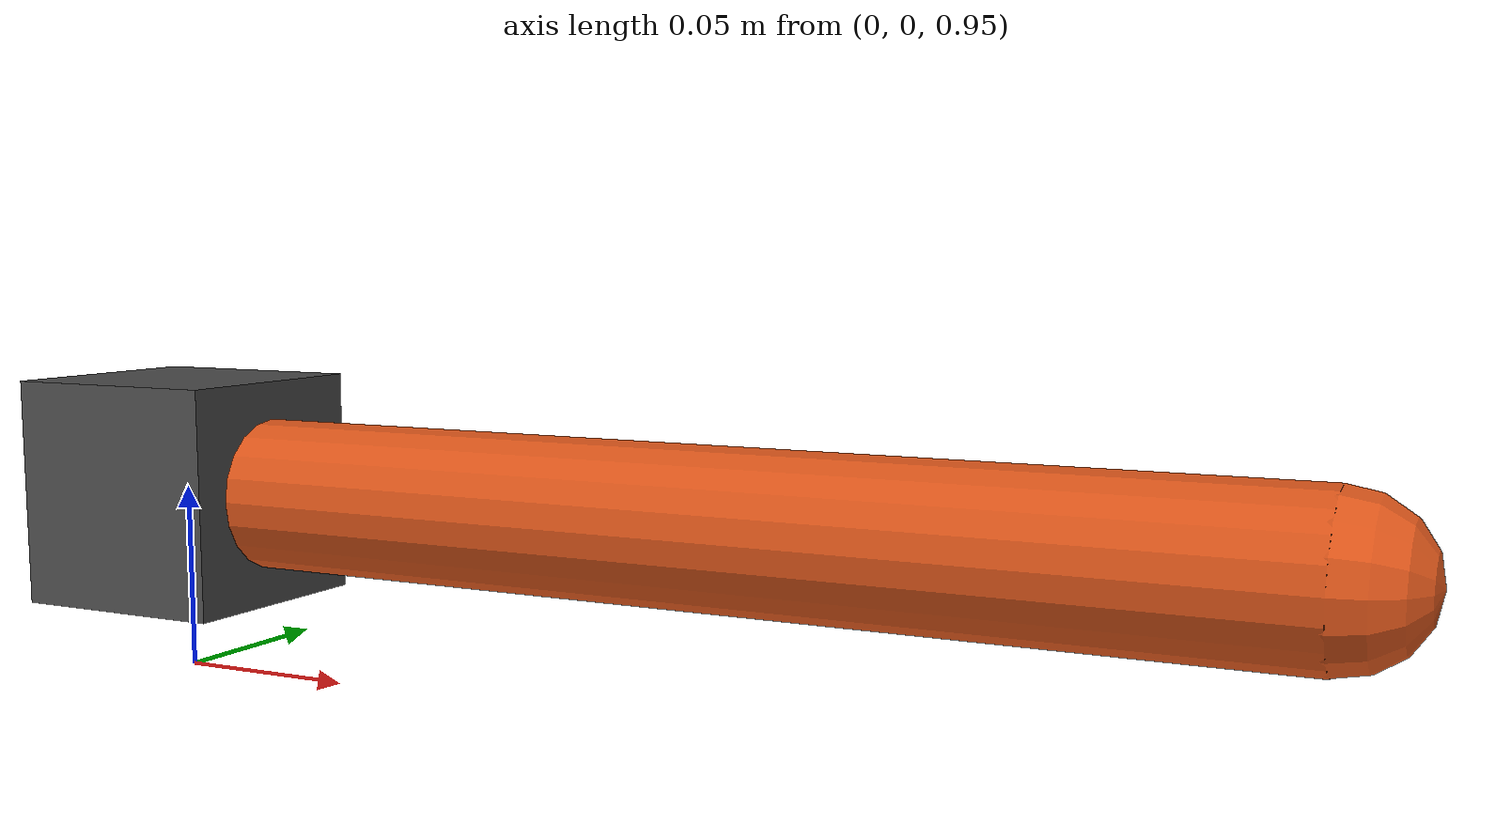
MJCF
<!-- BROKEN (debugging clinic, case 5): the forearm is supposed to swing down under gravity; it stays horizontal. -->
<mujoco model="wrong_axis">
  <compiler angle="radian" autolimits="true"/>
  <worldbody>
    <light pos="0 -1 2" dir="0 0.5 -1"/>
    <body name="upper" pos="0 0 1">
      <geom type="box" size="0.03 0.03 0.03" rgba=".3 .3 .3 1"/>
      <body name="forearm" pos="0 0 0">
        <joint name="elbow" type="hinge" axis="0 0 1" damping="0.05"/>
        <geom type="capsule" fromto="0 0 0 0.3 0 0" size="0.02" mass="0.3" rgba=".85 .33 .1 1"/>
      </body>
    </body>
  </worldbody>
</mujoco>
